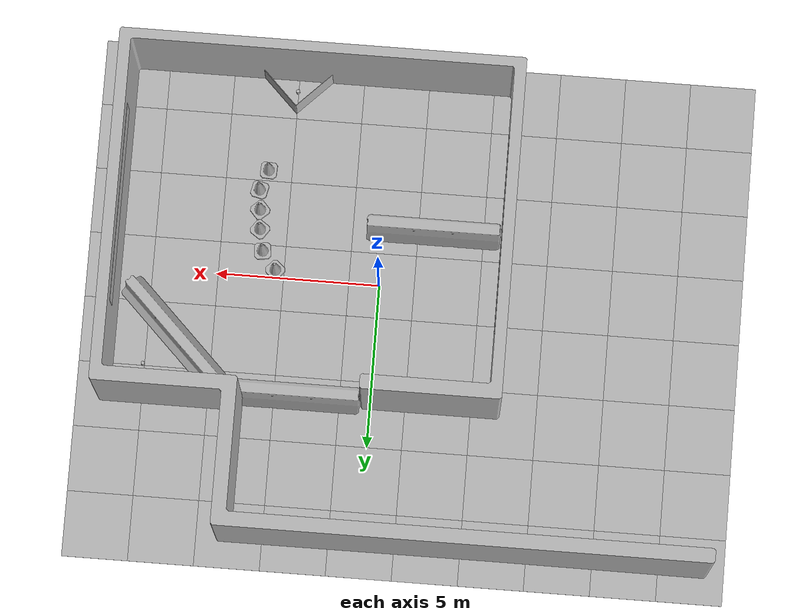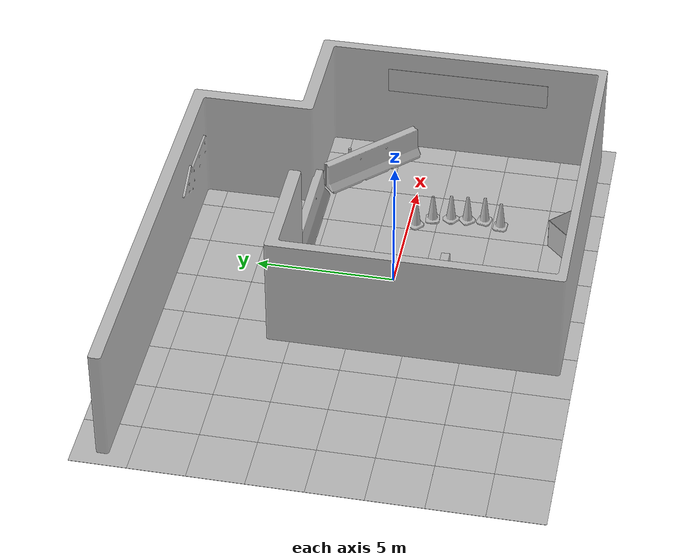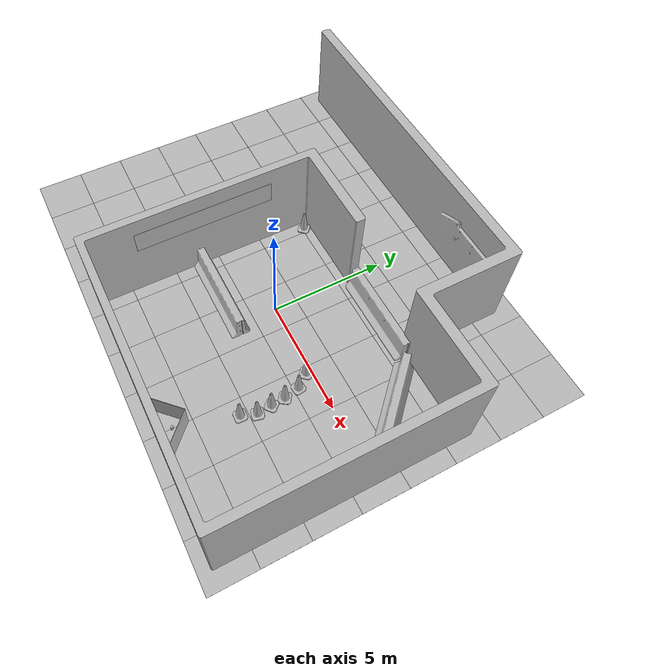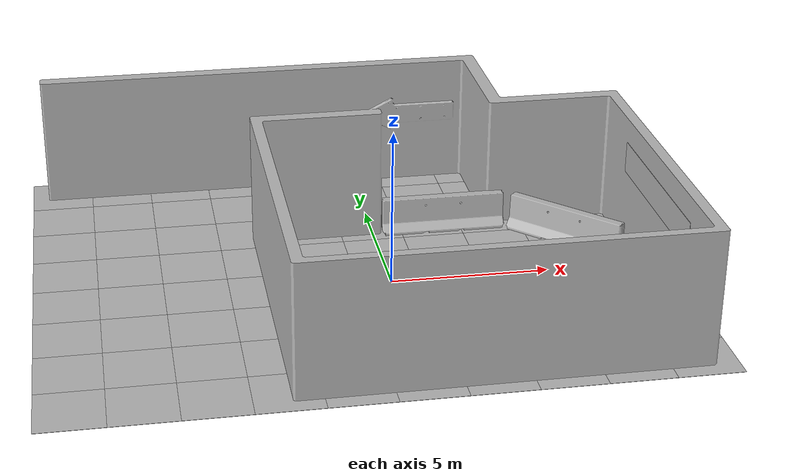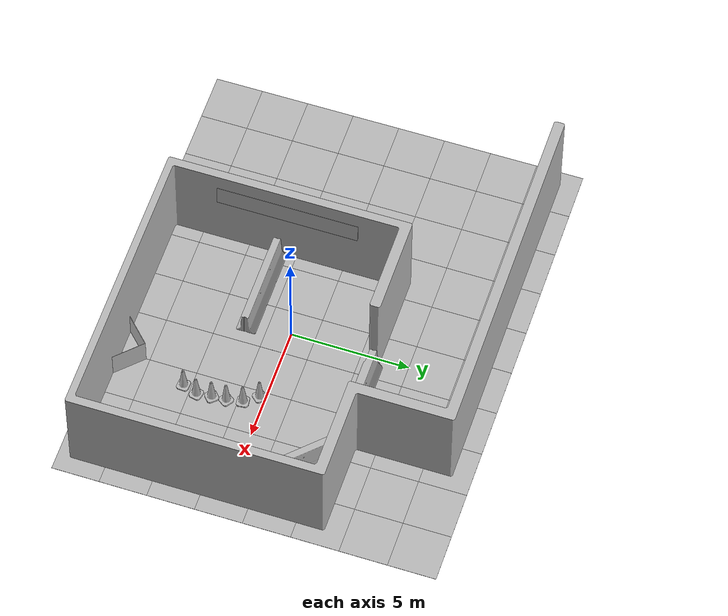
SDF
<sdf version="1.6">
 <world name="default">
  <light name="sun" type="directional">
   <pose>0 0 10 0 -0 0</pose>
   <diffuse>0.8 0.8 0.8 1</diffuse>
   <specular>0.2 0.2 0.2 1</specular>
   <attenuation>
    <range>1000</range>
    <constant>0.9</constant>
    <linear>0.01</linear>
    <quadratic>0.001</quadratic>
   </attenuation>
   <direction>-0.5 0.1 -0.9</direction>
  </light>
  <gravity>0 0 -9.8</gravity>
  <magnetic_field>6e-06 2.3e-05 -4.2e-05</magnetic_field>
  <atmosphere type="adiabatic"/>
  <physics name="default_physics" default="0" type="ode">
   <max_step_size>0.001</max_step_size>
   <real_time_factor>1</real_time_factor>
   <real_time_update_rate>1000</real_time_update_rate>
  </physics>
  <scene><ambient>0.4 0.4 0.4 1</ambient><background>0.7 0.7 0.7 1</background><shadows>1</shadows></scene>
  <audio><device>default</device></audio>
  <spherical_coordinates>
   <surface_model>EARTH_WGS84</surface_model>
   <latitude_deg>0</latitude_deg>
   <longitude_deg>0</longitude_deg>
   <elevation>0</elevation>
   <heading_deg>0</heading_deg>
  </spherical_coordinates>
  <model name="Starting Pen">
   <static>1</static>
   <link name="link">
    <collision name="wall_01">
     <pose>-0 0 2.14 0 -0 0</pose>
     <geometry><box><size>12.15 0.31 4.28</size></box></geometry>
    </collision>
    <collision name="wall_02">
     <pose>-5.28 14.3205 2.14 0 -0 0</pose>
     <geometry><box><size>14.8 0.46 4.28</size></box></geometry>
    </collision>
    <collision name="wall_03">
     <pose>-5.91 5 2.14 0 -0 0</pose>
     <geometry><box><size>0.385 10.3 4.28</size></box></geometry>
    </collision>
    <collision name="wall_04">
     <pose>5.91 5.161 2.14 0 -0 0</pose>
     <geometry><box><size>0.385 10.66 4.28</size></box></geometry>
    </collision>
    <collision name="wall_05">
     <pose>3.9 10.285 2.14 0 -0 0</pose>
     <geometry><box><size>4.38 0.45 4.28</size></box></geometry>
    </collision>
    <collision name="wall_06">
     <pose>-4 9.95 2.14 0 -0 0</pose>
     <geometry><box><size>4.25 0.45 4.28</size></box></geometry>
    </collision>
    <collision name="wall_07">
     <pose>1.94 12.3 2.14 0 -0 0</pose>
     <geometry><box><size>0.45 4.5 4.28</size></box></geometry>
    </collision>
    <collision name="wall_arrow">
     <pose>-0.232 14.03 2.46 0 -0 0</pose>
     <geometry><box><size>3.33 0.12 1.16</size></box></geometry>
    </collision>
    <collision name="collision_floor">
     <pose>-3.21 7.355 0 0 -0 0</pose>
     <geometry><box><size>20 16 0.01</size></box></geometry>
     <surface><friction><ode><mu>100</mu><mu2>50</mu2></ode></friction></surface>
    </collision>
    <visual name="visual_osrf">
     <pose>-5.74 4.99 3 0 -0 0</pose>
     <geometry><box><size>0.01 6 1</size></box></geometry>
     <material>
      <script>
       <uri>model://starting_pen/materials/scripts</uri>
       <uri>model://starting_pen/materials/textures</uri>
       <name>StartingPen/OSRF</name>
      </script>
     </material>
    </visual>
    <visual name="visual_osrf_2">
     <pose>5.74 4.99 3 0 -0 0</pose>
     <geometry><box><size>0.01 6 1</size></box></geometry>
     <material>
      <script>
       <uri>model://starting_pen/materials/scripts</uri>
       <uri>model://starting_pen/materials/textures</uri>
       <name>StartingPen/OSRF</name>
      </script>
     </material>
    </visual>
    <visual name="visual">
     <geometry><mesh><uri>model://starting_pen/meshes/starting_pen.dae</uri></mesh></geometry>
    </visual>
    <visual name="visual_floor_0">
     <pose>-12.21 0.35 0 0 -0 0</pose>
     <geometry><box><size>2 2 0.01</size></box></geometry>
     <material>
      <script>
       <uri>model://starting_pen/materials/scripts</uri>
       <uri>model://starting_pen/materials/textures</uri>
       <name>StartingPen/Floor</name>
      </script>
     </material>
    </visual>
    <visual name="visual_floor_1">
     <pose>-10.21 0.35 0 0 -0 0</pose>
     <geometry><box><size>2 2 0.01</size></box></geometry>
     <material>
      <script>
       <uri>model://starting_pen/materials/scripts</uri>
       <uri>model://starting_pen/materials/textures</uri>
       <name>StartingPen/Floor</name>
      </script>
     </material>
    </visual>
    <visual name="visual_floor_2">
     <pose>-8.21 0.35 0 0 -0 0</pose>
     <geometry><box><size>2 2 0.01</size></box></geometry>
     <material>
      <script>
       <uri>model://starting_pen/materials/scripts</uri>
       <uri>model://starting_pen/materials/textures</uri>
       <name>StartingPen/Floor</name>
      </script>
     </material>
    </visual>
    <visual name="visual_floor_3">
     <pose>-6.21 0.35 0 0 -0 0</pose>
     <geometry><box><size>2 2 0.01</size></box></geometry>
     <material>
      <script>
       <uri>model://starting_pen/materials/scripts</uri>
       <uri>model://starting_pen/materials/textures</uri>
       <name>StartingPen/Floor</name>
      </script>
     </material>
    </visual>
    <visual name="visual_floor_4">
     <pose>-4.21 0.35 0 0 -0 0</pose>
     <geometry><box><size>2 2 0.01</size></box></geometry>
     <material>
      <script>
       <uri>model://starting_pen/materials/scripts</uri>
       <uri>model://starting_pen/materials/textures</uri>
       <name>StartingPen/Floor</name>
      </script>
     </material>
    </visual>
    <visual name="visual_floor_5">
     <pose>-2.21 0.35 0 0 -0 0</pose>
     <geometry><box><size>2 2 0.01</size></box></geometry>
     <material>
      <script>
       <uri>model://starting_pen/materials/scripts</uri>
       <uri>model://starting_pen/materials/textures</uri>
       <name>StartingPen/Floor</name>
      </script>
     </material>
    </visual>
    <visual name="visual_floor_6">
     <pose>-0.21 0.35 0 0 -0 0</pose>
     <geometry><box><size>2 2 0.01</size></box></geometry>
     <material>
      <script>
       <uri>model://starting_pen/materials/scripts</uri>
       <uri>model://starting_pen/materials/textures</uri>
       <name>StartingPen/Floor</name>
      </script>
     </material>
    </visual>
    <visual name="visual_floor_7">
     <pose>1.79 0.35 0 0 -0 1.5707</pose>
     <geometry><box><size>2 2 0.01</size></box></geometry>
     <material>
      <script>
       <uri>model://starting_pen/materials/scripts</uri>
       <uri>model://starting_pen/materials/textures</uri>
       <name>StartingPen/FloorStripped</name>
      </script>
     </material>
    </visual>
    <visual name="visual_floor_8">
     <pose>3.79 0.35 0 0 -0 0</pose>
     <geometry><box><size>2 2 0.01</size></box></geometry>
     <material>
      <script>
       <uri>model://starting_pen/materials/scripts</uri>
       <uri>model://starting_pen/materials/textures</uri>
       <name>StartingPen/Floor</name>
      </script>
     </material>
    </visual>
    <visual name="visual_floor_9">
     <pose>5.79 0.35 0 0 -0 0</pose>
     <geometry><box><size>2 2 0.01</size></box></geometry>
     <material>
      <script>
       <uri>model://starting_pen/materials/scripts</uri>
       <uri>model://starting_pen/materials/textures</uri>
       <name>StartingPen/Floor</name>
      </script>
     </material>
    </visual>
    <visual name="visual_floor_10">
     <pose>-12.21 2.35 0 0 -0 1.5707</pose>
     <geometry><box><size>2 2 0.01</size></box></geometry>
     <material>
      <script>
       <uri>model://starting_pen/materials/scripts</uri>
       <uri>model://starting_pen/materials/textures</uri>
       <name>StartingPen/FloorStripped</name>
      </script>
     </material>
    </visual>
    <visual name="visual_floor_11">
     <pose>-10.21 2.35 0 0 -0 0</pose>
     <geometry><box><size>2 2 0.01</size></box></geometry>
     <material>
      <script>
       <uri>model://starting_pen/materials/scripts</uri>
       <uri>model://starting_pen/materials/textures</uri>
       <name>StartingPen/Floor</name>
      </script>
     </material>
    </visual>
    <visual name="visual_floor_12">
     <pose>-8.21 2.35 0 0 -0 0</pose>
     <geometry><box><size>2 2 0.01</size></box></geometry>
     <material>
      <script>
       <uri>model://starting_pen/materials/scripts</uri>
       <uri>model://starting_pen/materials/textures</uri>
       <name>StartingPen/Floor</name>
      </script>
     </material>
    </visual>
    <visual name="visual_floor_13">
     <pose>-6.21 2.35 0 0 -0 0</pose>
     <geometry><box><size>2 2 0.01</size></box></geometry>
     <material>
      <script>
       <uri>model://starting_pen/materials/scripts</uri>
       <uri>model://starting_pen/materials/textures</uri>
       <name>StartingPen/Floor</name>
      </script>
     </material>
    </visual>
    <visual name="visual_floor_14">
     <pose>-4.21 2.35 0 0 -0 0</pose>
     <geometry><box><size>2 2 0.01</size></box></geometry>
     <material>
      <script>
       <uri>model://starting_pen/materials/scripts</uri>
       <uri>model://starting_pen/materials/textures</uri>
       <name>StartingPen/Floor</name>
      </script>
     </material>
    </visual>
    <visual name="visual_floor_15">
     <pose>-2.21 2.35 0 0 -0 0</pose>
     <geometry><box><size>2 2 0.01</size></box></geometry>
     <material>
      <script>
       <uri>model://starting_pen/materials/scripts</uri>
       <uri>model://starting_pen/materials/textures</uri>
       <name>StartingPen/Floor</name>
      </script>
     </material>
    </visual>
    <visual name="visual_floor_16">
     <pose>-0.21 2.35 0 0 -0 1.5707</pose>
     <geometry><box><size>2 2 0.01</size></box></geometry>
     <material>
      <script>
       <uri>model://starting_pen/materials/scripts</uri>
       <uri>model://starting_pen/materials/textures</uri>
       <name>StartingPen/FloorStripped</name>
      </script>
     </material>
    </visual>
    <visual name="visual_floor_17">
     <pose>1.79 2.35 0 0 -0 1.5707</pose>
     <geometry><box><size>2 2 0.01</size></box></geometry>
     <material>
      <script>
       <uri>model://starting_pen/materials/scripts</uri>
       <uri>model://starting_pen/materials/textures</uri>
       <name>StartingPen/Floor</name>
      </script>
     </material>
    </visual>
    <visual name="visual_floor_18">
     <pose>3.79 2.35 0 0 -0 0</pose>
     <geometry><box><size>2 2 0.01</size></box></geometry>
     <material>
      <script>
       <uri>model://starting_pen/materials/scripts</uri>
       <uri>model://starting_pen/materials/textures</uri>
       <name>StartingPen/Floor</name>
      </script>
     </material>
    </visual>
    <visual name="visual_floor_19">
     <pose>5.79 2.35 0 0 -0 0</pose>
     <geometry><box><size>2 2 0.01</size></box></geometry>
     <material>
      <script>
       <uri>model://starting_pen/materials/scripts</uri>
       <uri>model://starting_pen/materials/textures</uri>
       <name>StartingPen/Floor</name>
      </script>
     </material>
    </visual>
    <visual name="visual_floor_20">
     <pose>-12.21 4.35 0 0 -0 0</pose>
     <geometry><box><size>2 2 0.01</size></box></geometry>
     <material>
      <script>
       <uri>model://starting_pen/materials/scripts</uri>
       <uri>model://starting_pen/materials/textures</uri>
       <name>StartingPen/Floor</name>
      </script>
     </material>
    </visual>
    <visual name="visual_floor_21">
     <pose>-10.21 4.35 0 0 -0 0</pose>
     <geometry><box><size>2 2 0.01</size></box></geometry>
     <material>
      <script>
       <uri>model://starting_pen/materials/scripts</uri>
       <uri>model://starting_pen/materials/textures</uri>
       <name>StartingPen/Floor</name>
      </script>
     </material>
    </visual>
    <visual name="visual_floor_22">
     <pose>-8.21 4.35 0 0 -0 1.5707</pose>
     <geometry><box><size>2 2 0.01</size></box></geometry>
     <material>
      <script>
       <uri>model://starting_pen/materials/scripts</uri>
       <uri>model://starting_pen/materials/textures</uri>
       <name>StartingPen/FloorStripped</name>
      </script>
     </material>
    </visual>
    <visual name="visual_floor_23">
     <pose>-6.21 4.35 0 0 -0 0</pose>
     <geometry><box><size>2 2 0.01</size></box></geometry>
     <material>
      <script>
       <uri>model://starting_pen/materials/scripts</uri>
       <uri>model://starting_pen/materials/textures</uri>
       <name>StartingPen/Floor</name>
      </script>
     </material>
    </visual>
    <visual name="visual_floor_24">
     <pose>-4.21 4.35 0 0 -0 0</pose>
     <geometry><box><size>2 2 0.01</size></box></geometry>
     <material>
      <script>
       <uri>model://starting_pen/materials/scripts</uri>
       <uri>model://starting_pen/materials/textures</uri>
       <name>StartingPen/Floor</name>
      </script>
     </material>
    </visual>
    <visual name="visual_floor_25">
     <pose>-2.21 4.35 0 0 -0 0</pose>
     <geometry><box><size>2 2 0.01</size></box></geometry>
     <material>
      <script>
       <uri>model://starting_pen/materials/scripts</uri>
       <uri>model://starting_pen/materials/textures</uri>
       <name>StartingPen/Floor</name>
      </script>
     </material>
    </visual>
    <visual name="visual_floor_26">
     <pose>-0.21 4.35 0 0 -0 0</pose>
     <geometry><box><size>2 2 0.01</size></box></geometry>
     <material>
      <script>
       <uri>model://starting_pen/materials/scripts</uri>
       <uri>model://starting_pen/materials/textures</uri>
       <name>StartingPen/Floor</name>
      </script>
     </material>
    </visual>
    <visual name="visual_floor_27">
     <pose>1.79 4.35 0 0 -0 0</pose>
     <geometry><box><size>2 2 0.01</size></box></geometry>
     <material>
      <script>
       <uri>model://starting_pen/materials/scripts</uri>
       <uri>model://starting_pen/materials/textures</uri>
       <name>StartingPen/Floor</name>
      </script>
     </material>
    </visual>
    <visual name="visual_floor_28">
     <pose>3.79 4.35 0 0 -0 0</pose>
     <geometry><box><size>2 2 0.01</size></box></geometry>
     <material>
      <script>
       <uri>model://starting_pen/materials/scripts</uri>
       <uri>model://starting_pen/materials/textures</uri>
       <name>StartingPen/Floor</name>
      </script>
     </material>
    </visual>
    <visual name="visual_floor_29">
     <pose>5.79 4.35 0 0 -0 1.5707</pose>
     <geometry><box><size>2 2 0.01</size></box></geometry>
     <material>
      <script>
       <uri>model://starting_pen/materials/scripts</uri>
       <uri>model://starting_pen/materials/textures</uri>
       <name>StartingPen/FloorStripped</name>
      </script>
     </material>
    </visual>
    <visual name="visual_floor_30">
     <pose>-12.21 6.35 0 0 -0 0</pose>
     <geometry><box><size>2 2 0.01</size></box></geometry>
     <material>
      <script>
       <uri>model://starting_pen/materials/scripts</uri>
       <uri>model://starting_pen/materials/textures</uri>
       <name>StartingPen/Floor</name>
      </script>
     </material>
    </visual>
    <visual name="visual_floor_31">
     <pose>-10.21 6.35 0 0 -0 0</pose>
     <geometry><box><size>2 2 0.01</size></box></geometry>
     <material>
      <script>
       <uri>model://starting_pen/materials/scripts</uri>
       <uri>model://starting_pen/materials/textures</uri>
       <name>StartingPen/Floor</name>
      </script>
     </material>
    </visual>
    <visual name="visual_floor_32">
     <pose>-8.21 6.35 0 0 -0 0</pose>
     <geometry><box><size>2 2 0.01</size></box></geometry>
     <material>
      <script>
       <uri>model://starting_pen/materials/scripts</uri>
       <uri>model://starting_pen/materials/textures</uri>
       <name>StartingPen/Floor</name>
      </script>
     </material>
    </visual>
    <visual name="visual_floor_33">
     <pose>-6.21 6.35 0 0 -0 1.5707</pose>
     <geometry><box><size>2 2 0.01</size></box></geometry>
     <material>
      <script>
       <uri>model://starting_pen/materials/scripts</uri>
       <uri>model://starting_pen/materials/textures</uri>
       <name>StartingPen/FloorStripped</name>
      </script>
     </material>
    </visual>
    <visual name="visual_floor_34">
     <pose>-4.21 6.35 0 0 -0 0</pose>
     <geometry><box><size>2 2 0.01</size></box></geometry>
     <material>
      <script>
       <uri>model://starting_pen/materials/scripts</uri>
       <uri>model://starting_pen/materials/textures</uri>
       <name>StartingPen/Floor</name>
      </script>
     </material>
    </visual>
    <visual name="visual_floor_35">
     <pose>-2.21 6.35 0 0 -0 1.5707</pose>
     <geometry><box><size>2 2 0.01</size></box></geometry>
     <material>
      <script>
       <uri>model://starting_pen/materials/scripts</uri>
       <uri>model://starting_pen/materials/textures</uri>
       <name>StartingPen/FloorStripped</name>
      </script>
     </material>
    </visual>
    <visual name="visual_floor_36">
     <pose>-0.21 6.35 0 0 -0 0</pose>
     <geometry><box><size>2 2 0.01</size></box></geometry>
     <material>
      <script>
       <uri>model://starting_pen/materials/scripts</uri>
       <uri>model://starting_pen/materials/textures</uri>
       <name>StartingPen/Floor</name>
      </script>
     </material>
    </visual>
    <visual name="visual_floor_37">
     <pose>1.79 6.35 0 0 -0 0</pose>
     <geometry><box><size>2 2 0.01</size></box></geometry>
     <material>
      <script>
       <uri>model://starting_pen/materials/scripts</uri>
       <uri>model://starting_pen/materials/textures</uri>
       <name>StartingPen/Floor</name>
      </script>
     </material>
    </visual>
    <visual name="visual_floor_38">
     <pose>3.79 6.35 0 0 -0 0</pose>
     <geometry><box><size>2 2 0.01</size></box></geometry>
     <material>
      <script>
       <uri>model://starting_pen/materials/scripts</uri>
       <uri>model://starting_pen/materials/textures</uri>
       <name>StartingPen/Floor</name>
      </script>
     </material>
    </visual>
    <visual name="visual_floor_39">
     <pose>5.79 6.35 0 0 -0 0</pose>
     <geometry><box><size>2 2 0.01</size></box></geometry>
     <material>
      <script>
       <uri>model://starting_pen/materials/scripts</uri>
       <uri>model://starting_pen/materials/textures</uri>
       <name>StartingPen/Floor</name>
      </script>
     </material>
    </visual>
    <visual name="visual_floor_40">
     <pose>-12.21 8.35 0 0 -0 0</pose>
     <geometry><box><size>2 2 0.01</size></box></geometry>
     <material>
      <script>
       <uri>model://starting_pen/materials/scripts</uri>
       <uri>model://starting_pen/materials/textures</uri>
       <name>StartingPen/Floor</name>
      </script>
     </material>
    </visual>
    <visual name="visual_floor_41">
     <pose>-10.21 8.35 0 0 -0 0</pose>
     <geometry><box><size>2 2 0.01</size></box></geometry>
     <material>
      <script>
       <uri>model://starting_pen/materials/scripts</uri>
       <uri>model://starting_pen/materials/textures</uri>
       <name>StartingPen/Floor</name>
      </script>
     </material>
    </visual>
    <visual name="visual_floor_42">
     <pose>-8.21 8.35 0 0 -0 1.5707</pose>
     <geometry><box><size>2 2 0.01</size></box></geometry>
     <material>
      <script>
       <uri>model://starting_pen/materials/scripts</uri>
       <uri>model://starting_pen/materials/textures</uri>
       <name>StartingPen/FloorStripped</name>
      </script>
     </material>
    </visual>
    <visual name="visual_floor_43">
     <pose>-6.21 8.35 0 0 -0 0</pose>
     <geometry><box><size>2 2 0.01</size></box></geometry>
     <material>
      <script>
       <uri>model://starting_pen/materials/scripts</uri>
       <uri>model://starting_pen/materials/textures</uri>
       <name>StartingPen/Floor</name>
      </script>
     </material>
    </visual>
    <visual name="visual_floor_44">
     <pose>-4.21 8.35 0 0 -0 0</pose>
     <geometry><box><size>2 2 0.01</size></box></geometry>
     <material>
      <script>
       <uri>model://starting_pen/materials/scripts</uri>
       <uri>model://starting_pen/materials/textures</uri>
       <name>StartingPen/Floor</name>
      </script>
     </material>
    </visual>
    <visual name="visual_floor_45">
     <pose>-2.21 8.35 0 0 -0 0</pose>
     <geometry><box><size>2 2 0.01</size></box></geometry>
     <material>
      <script>
       <uri>model://starting_pen/materials/scripts</uri>
       <uri>model://starting_pen/materials/textures</uri>
       <name>StartingPen/Floor</name>
      </script>
     </material>
    </visual>
    <visual name="visual_floor_46">
     <pose>-0.21 8.35 0 0 -0 1.5707</pose>
     <geometry><box><size>2 2 0.01</size></box></geometry>
     <material>
      <script>
       <uri>model://starting_pen/materials/scripts</uri>
       <uri>model://starting_pen/materials/textures</uri>
       <name>StartingPen/FloorStripped</name>
      </script>
     </material>
    </visual>
    <visual name="visual_floor_47">
     <pose>1.79 8.35 0 0 -0 0</pose>
     <geometry><box><size>2 2 0.01</size></box></geometry>
     <material>
      <script>
       <uri>model://starting_pen/materials/scripts</uri>
       <uri>model://starting_pen/materials/textures</uri>
       <name>StartingPen/Floor</name>
      </script>
     </material>
    </visual>
    <visual name="visual_floor_48">
     <pose>3.79 8.35 0 0 -0 0</pose>
     <geometry><box><size>2 2 0.01</size></box></geometry>
     <material>
      <script>
       <uri>model://starting_pen/materials/scripts</uri>
       <uri>model://starting_pen/materials/textures</uri>
       <name>StartingPen/Floor</name>
      </script>
     </material>
    </visual>
    <visual name="visual_floor_49">
     <pose>5.79 8.35 0 0 -0 0</pose>
     <geometry><box><size>2 2 0.01</size></box></geometry>
     <material>
      <script>
       <uri>model://starting_pen/materials/scripts</uri>
       <uri>model://starting_pen/materials/textures</uri>
       <name>StartingPen/Floor</name>
      </script>
     </material>
    </visual>
    <visual name="visual_floor_50">
     <pose>-12.21 10.35 0 0 -0 0</pose>
     <geometry><box><size>2 2 0.01</size></box></geometry>
     <material>
      <script>
       <uri>model://starting_pen/materials/scripts</uri>
       <uri>model://starting_pen/materials/textures</uri>
       <name>StartingPen/Floor</name>
      </script>
     </material>
    </visual>
    <visual name="visual_floor_51">
     <pose>-10.21 10.35 0 0 -0 0</pose>
     <geometry><box><size>2 2 0.01</size></box></geometry>
     <material>
      <script>
       <uri>model://starting_pen/materials/scripts</uri>
       <uri>model://starting_pen/materials/textures</uri>
       <name>StartingPen/Floor</name>
      </script>
     </material>
    </visual>
    <visual name="visual_floor_52">
     <pose>-8.21 10.35 0 0 -0 0</pose>
     <geometry><box><size>2 2 0.01</size></box></geometry>
     <material>
      <script>
       <uri>model://starting_pen/materials/scripts</uri>
       <uri>model://starting_pen/materials/textures</uri>
       <name>StartingPen/Floor</name>
      </script>
     </material>
    </visual>
    <visual name="visual_floor_53">
     <pose>-6.21 10.35 0 0 -0 1.5707</pose>
     <geometry><box><size>2 2 0.01</size></box></geometry>
     <material>
      <script>
       <uri>model://starting_pen/materials/scripts</uri>
       <uri>model://starting_pen/materials/textures</uri>
       <name>StartingPen/FloorStripped</name>
      </script>
     </material>
    </visual>
    <visual name="visual_floor_54">
     <pose>-4.21 10.35 0 0 -0 0</pose>
     <geometry><box><size>2 2 0.01</size></box></geometry>
     <material>
      <script>
       <uri>model://starting_pen/materials/scripts</uri>
       <uri>model://starting_pen/materials/textures</uri>
       <name>StartingPen/Floor</name>
      </script>
     </material>
    </visual>
    <visual name="visual_floor_55">
     <pose>-2.21 10.35 0 0 -0 0</pose>
     <geometry><box><size>2 2 0.01</size></box></geometry>
     <material>
      <script>
       <uri>model://starting_pen/materials/scripts</uri>
       <uri>model://starting_pen/materials/textures</uri>
       <name>StartingPen/Floor</name>
      </script>
     </material>
    </visual>
    <visual name="visual_floor_56">
     <pose>-0.21 10.35 0 0 -0 0</pose>
     <geometry><box><size>2 2 0.01</size></box></geometry>
     <material>
      <script>
       <uri>model://starting_pen/materials/scripts</uri>
       <uri>model://starting_pen/materials/textures</uri>
       <name>StartingPen/Floor</name>
      </script>
     </material>
    </visual>
    <visual name="visual_floor_57">
     <pose>1.79 10.35 0 0 -0 0</pose>
     <geometry><box><size>2 2 0.01</size></box></geometry>
     <material>
      <script>
       <uri>model://starting_pen/materials/scripts</uri>
       <uri>model://starting_pen/materials/textures</uri>
       <name>StartingPen/Floor</name>
      </script>
     </material>
    </visual>
    <visual name="visual_floor_58">
     <pose>3.79 10.35 0 0 -0 0</pose>
     <geometry><box><size>2 2 0.01</size></box></geometry>
     <material>
      <script>
       <uri>model://starting_pen/materials/scripts</uri>
       <uri>model://starting_pen/materials/textures</uri>
       <name>StartingPen/Floor</name>
      </script>
     </material>
    </visual>
    <visual name="visual_floor_59">
     <pose>5.79 10.35 0 0 -0 0</pose>
     <geometry><box><size>2 2 0.01</size></box></geometry>
     <material>
      <script>
       <uri>model://starting_pen/materials/scripts</uri>
       <uri>model://starting_pen/materials/textures</uri>
       <name>StartingPen/Floor</name>
      </script>
     </material>
    </visual>
    <visual name="visual_floor_60">
     <pose>-12.21 12.35 0 0 -0 1.5707</pose>
     <geometry><box><size>2 2 0.01</size></box></geometry>
     <material>
      <script>
       <uri>model://starting_pen/materials/scripts</uri>
       <uri>model://starting_pen/materials/textures</uri>
       <name>StartingPen/FloorStripped</name>
      </script>
     </material>
    </visual>
    <visual name="visual_floor_61">
     <pose>-10.21 12.35 0 0 -0 0</pose>
     <geometry><box><size>2 2 0.01</size></box></geometry>
     <material>
      <script>
       <uri>model://starting_pen/materials/scripts</uri>
       <uri>model://starting_pen/materials/textures</uri>
       <name>StartingPen/Floor</name>
      </script>
     </material>
    </visual>
    <visual name="visual_floor_62">
     <pose>-8.21 12.35 0 0 -0 0</pose>
     <geometry><box><size>2 2 0.01</size></box></geometry>
     <material>
      <script>
       <uri>model://starting_pen/materials/scripts</uri>
       <uri>model://starting_pen/materials/textures</uri>
       <name>StartingPen/Floor</name>
      </script>
     </material>
    </visual>
    <visual name="visual_floor_63">
     <pose>-6.21 12.35 0 0 -0 0</pose>
     <geometry><box><size>2 2 0.01</size></box></geometry>
     <material>
      <script>
       <uri>model://starting_pen/materials/scripts</uri>
       <uri>model://starting_pen/materials/textures</uri>
       <name>StartingPen/Floor</name>
      </script>
     </material>
    </visual>
    <visual name="visual_floor_64">
     <pose>-4.21 12.35 0 0 -0 0</pose>
     <geometry><box><size>2 2 0.01</size></box></geometry>
     <material>
      <script>
       <uri>model://starting_pen/materials/scripts</uri>
       <uri>model://starting_pen/materials/textures</uri>
       <name>StartingPen/Floor</name>
      </script>
     </material>
    </visual>
    <visual name="visual_floor_65">
     <pose>-2.21 12.35 0 0 -0 1.5707</pose>
     <geometry><box><size>2 2 0.01</size></box></geometry>
     <material>
      <script>
       <uri>model://starting_pen/materials/scripts</uri>
       <uri>model://starting_pen/materials/textures</uri>
       <name>StartingPen/FloorStripped</name>
      </script>
     </material>
    </visual>
    <visual name="visual_floor_66">
     <pose>-0.21 12.35 0 0 -0 0</pose>
     <geometry><box><size>2 2 0.01</size></box></geometry>
     <material>
      <script>
       <uri>model://starting_pen/materials/scripts</uri>
       <uri>model://starting_pen/materials/textures</uri>
       <name>StartingPen/Floor</name>
      </script>
     </material>
    </visual>
    <visual name="visual_floor_67">
     <pose>1.79 12.35 0 0 -0 0</pose>
     <geometry><box><size>2 2 0.01</size></box></geometry>
     <material>
      <script>
       <uri>model://starting_pen/materials/scripts</uri>
       <uri>model://starting_pen/materials/textures</uri>
       <name>StartingPen/Floor</name>
      </script>
     </material>
    </visual>
    <visual name="visual_floor_68">
     <pose>3.79 12.35 0 0 -0 0</pose>
     <geometry><box><size>2 2 0.01</size></box></geometry>
     <material>
      <script>
       <uri>model://starting_pen/materials/scripts</uri>
       <uri>model://starting_pen/materials/textures</uri>
       <name>StartingPen/Floor</name>
      </script>
     </material>
    </visual>
    <visual name="visual_floor_69">
     <pose>5.79 12.35 0 0 -0 0</pose>
     <geometry><box><size>2 2 0.01</size></box></geometry>
     <material>
      <script>
       <uri>model://starting_pen/materials/scripts</uri>
       <uri>model://starting_pen/materials/textures</uri>
       <name>StartingPen/Floor</name>
      </script>
     </material>
    </visual>
    <visual name="visual_floor_70">
     <pose>-12.21 14.35 0 0 -0 0</pose>
     <geometry><box><size>2 2 0.01</size></box></geometry>
     <material>
      <script>
       <uri>model://starting_pen/materials/scripts</uri>
       <uri>model://starting_pen/materials/textures</uri>
       <name>StartingPen/Floor</name>
      </script>
     </material>
    </visual>
    <visual name="visual_floor_71">
     <pose>-10.21 14.35 0 0 -0 0</pose>
     <geometry><box><size>2 2 0.01</size></box></geometry>
     <material>
      <script>
       <uri>model://starting_pen/materials/scripts</uri>
       <uri>model://starting_pen/materials/textures</uri>
       <name>StartingPen/Floor</name>
      </script>
     </material>
    </visual>
    <visual name="visual_floor_72">
     <pose>-8.21 14.35 0 0 -0 0</pose>
     <geometry><box><size>2 2 0.01</size></box></geometry>
     <material>
      <script>
       <uri>model://starting_pen/materials/scripts</uri>
       <uri>model://starting_pen/materials/textures</uri>
       <name>StartingPen/Floor</name>
      </script>
     </material>
    </visual>
    <visual name="visual_floor_73">
     <pose>-6.21 14.35 0 0 -0 0</pose>
     <geometry><box><size>2 2 0.01</size></box></geometry>
     <material>
      <script>
       <uri>model://starting_pen/materials/scripts</uri>
       <uri>model://starting_pen/materials/textures</uri>
       <name>StartingPen/Floor</name>
      </script>
     </material>
    </visual>
    <visual name="visual_floor_74">
     <pose>-4.21 14.35 0 0 -0 1.5707</pose>
     <geometry><box><size>2 2 0.01</size></box></geometry>
     <material>
      <script>
       <uri>model://starting_pen/materials/scripts</uri>
       <uri>model://starting_pen/materials/textures</uri>
       <name>StartingPen/FloorStripped</name>
      </script>
     </material>
    </visual>
    <visual name="visual_floor_75">
     <pose>-2.21 14.35 0 0 -0 1.5707</pose>
     <geometry><box><size>2 2 0.01</size></box></geometry>
     <material>
      <script>
       <uri>model://starting_pen/materials/scripts</uri>
       <uri>model://starting_pen/materials/textures</uri>
       <name>StartingPen/Floor</name>
      </script>
     </material>
    </visual>
    <visual name="visual_floor_76">
     <pose>-0.21 14.35 0 0 -0 0</pose>
     <geometry><box><size>2 2 0.01</size></box></geometry>
     <material>
      <script>
       <uri>model://starting_pen/materials/scripts</uri>
       <uri>model://starting_pen/materials/textures</uri>
       <name>StartingPen/Floor</name>
      </script>
     </material>
    </visual>
    <visual name="visual_floor_77">
     <pose>1.79 14.35 0 0 -0 0</pose>
     <geometry><box><size>2 2 0.01</size></box></geometry>
     <material>
      <script>
       <uri>model://starting_pen/materials/scripts</uri>
       <uri>model://starting_pen/materials/textures</uri>
       <name>StartingPen/Floor</name>
      </script>
     </material>
    </visual>
    <visual name="visual_floor_78">
     <pose>3.79 14.35 0 0 -0 0</pose>
     <geometry><box><size>2 2 0.01</size></box></geometry>
     <material>
      <script>
       <uri>model://starting_pen/materials/scripts</uri>
       <uri>model://starting_pen/materials/textures</uri>
       <name>StartingPen/FloorStripped</name>
      </script>
     </material>
    </visual>
    <visual name="visual_floor_79">
     <pose>5.79 14.35 0 0 -0 0</pose>
     <geometry><box><size>2 2 0.01</size></box></geometry>
     <material>
      <script>
       <uri>model://starting_pen/materials/scripts</uri>
       <uri>model://starting_pen/materials/textures</uri>
       <name>StartingPen/Floor</name>
      </script>
     </material>
    </visual>
   </link>
   <pose>2.14869 -6.3566 -0 0 -0 0</pose>
  </model>
  <model name="jersey_barrier">
   <static>1</static>
   <link name="link">
    <visual name="visual">
     <geometry><mesh><uri>model://jersey_barrier/meshes/jersey_barrier.dae</uri></mesh></geometry>
    </visual>
    <collision name="upright">
     <pose>0 0 0.5715 0 -0 0</pose>
     <geometry><box><size>4.06542 0.3063 1.143</size></box></geometry>
    </collision>
    <collision name="base">
     <pose>0 0 0.032258 0 -0 0</pose>
     <geometry><box><size>4.06542 0.8107 0.064516</size></box></geometry>
    </collision>
    <collision name="base2">
     <pose>0 0 0.1 0 -0 0</pose>
     <geometry><box><size>4.06542 0.65 0.1</size></box></geometry>
    </collision>
    <collision name="base3">
     <pose>0 0 0.2 0 -0 0</pose>
     <geometry><box><size>4.06542 0.5 0.1</size></box></geometry>
    </collision>
    <collision name="left-angle">
     <pose>0 -0.224 0.2401 0.9 -0 0</pose>
     <geometry><box><size>4.06542 0.5 0.064516</size></box></geometry>
    </collision>
    <collision name="right-angle">
     <pose>0 0.224 0.2401 -0.9 0 0</pose>
     <geometry><box><size>4.06542 0.5 0.064516</size></box></geometry>
    </collision>
   </link>
   <pose>2.34905 3.59557 0 0 -0 0</pose>
  </model>
  <model name="jersey_barrier_clone">
   <static>1</static>
   <link name="link">
    <visual name="visual">
     <geometry><mesh><uri>model://jersey_barrier/meshes/jersey_barrier.dae</uri></mesh></geometry>
    </visual>
    <collision name="upright">
     <pose>0 0 0.5715 0 -0 0</pose>
     <geometry><box><size>4.06542 0.3063 1.143</size></box></geometry>
    </collision>
    <collision name="base">
     <pose>0 0 0.032258 0 -0 0</pose>
     <geometry><box><size>4.06542 0.8107 0.064516</size></box></geometry>
    </collision>
    <collision name="base2">
     <pose>0 0 0.1 0 -0 0</pose>
     <geometry><box><size>4.06542 0.65 0.1</size></box></geometry>
    </collision>
    <collision name="base3">
     <pose>0 0 0.2 0 -0 0</pose>
     <geometry><box><size>4.06542 0.5 0.1</size></box></geometry>
    </collision>
    <collision name="left-angle">
     <pose>0 -0.224 0.2401 0.9 -0 0</pose>
     <geometry><box><size>4.06542 0.5 0.064516</size></box></geometry>
    </collision>
    <collision name="right-angle">
     <pose>0 0.224 0.2401 -0.9 0 0</pose>
     <geometry><box><size>4.06542 0.5 0.064516</size></box></geometry>
    </collision>
   </link>
   <pose>-1.52755 -1.78799 0 0 -0 0</pose>
  </model>
  <model name="jersey_barrier_clone_clone">
   <static>1</static>
   <link name="link">
    <visual name="visual">
     <geometry><mesh><uri>model://jersey_barrier/meshes/jersey_barrier.dae</uri></mesh></geometry>
    </visual>
    <collision name="upright">
     <pose>0 0 0.5715 0 -0 0</pose>
     <geometry><box><size>4.06542 0.3063 1.143</size></box></geometry>
    </collision>
    <collision name="base">
     <pose>0 0 0.032258 0 -0 0</pose>
     <geometry><box><size>4.06542 0.8107 0.064516</size></box></geometry>
    </collision>
    <collision name="base2">
     <pose>0 0 0.1 0 -0 0</pose>
     <geometry><box><size>4.06542 0.65 0.1</size></box></geometry>
    </collision>
    <collision name="base3">
     <pose>0 0 0.2 0 -0 0</pose>
     <geometry><box><size>4.06542 0.5 0.1</size></box></geometry>
    </collision>
    <collision name="left-angle">
     <pose>0 -0.224 0.2401 0.9 -0 0</pose>
     <geometry><box><size>4.06542 0.5 0.064516</size></box></geometry>
    </collision>
    <collision name="right-angle">
     <pose>0 0.224 0.2401 -0.9 0 0</pose>
     <geometry><box><size>4.06542 0.5 0.064516</size></box></geometry>
    </collision>
   </link>
   <pose>6.12534 1.96332 0 0 0 -0.785398</pose>
  </model>
  <model name="Construction Cone_clone">
   <link name="link">
    <collision name="collision">
     <geometry>
      <mesh><scale>10 10 10</scale><uri>model://construction_cone/meshes/construction_cone.dae</uri></mesh>
     </geometry>
    </collision>
    <visual name="visual">
     <geometry>
      <mesh><scale>10 10 10</scale><uri>model://construction_cone/meshes/construction_cone.dae</uri></mesh>
     </geometry>
    </visual>
    <inertial>
     <inertia><ixx>1</ixx><ixy>0</ixy><ixz>0</ixz><iyy>1</iyy><iyz>0</iyz><izz>1</izz></inertia>
     <mass>1</mass>
    </inertial>
   </link>
   <pose>3.2095 -0.246526 0.005 1e-06 -0 -0.744326</pose>
  </model>
  <model name="Construction Cone_clone_0">
   <link name="link">
    <collision name="collision">
     <geometry>
      <mesh><scale>10 10 10</scale><uri>model://construction_cone/meshes/construction_cone.dae</uri></mesh>
     </geometry>
    </collision>
    <visual name="visual">
     <geometry>
      <mesh><scale>10 10 10</scale><uri>model://construction_cone/meshes/construction_cone.dae</uri></mesh>
     </geometry>
    </visual>
    <inertial>
     <inertia><ixx>1</ixx><ixy>0</ixy><ixz>0</ixz><iyy>1</iyy><iyz>0</iyz><izz>1</izz></inertia>
     <mass>1</mass>
    </inertial>
   </link>
   <pose>3.63757 -0.804786 0.005 -0 1e-06 0.111105</pose>
  </model>
  <model name="Construction Cone_clone_1">
   <link name="link">
    <collision name="collision">
     <geometry>
      <mesh><scale>10 10 10</scale><uri>model://construction_cone/meshes/construction_cone.dae</uri></mesh>
     </geometry>
    </collision>
    <visual name="visual">
     <geometry>
      <mesh><scale>10 10 10</scale><uri>model://construction_cone/meshes/construction_cone.dae</uri></mesh>
     </geometry>
    </visual>
    <inertial>
     <inertia><ixx>1</ixx><ixy>0</ixy><ixz>0</ixz><iyy>1</iyy><iyz>0</iyz><izz>1</izz></inertia>
     <mass>1</mass>
    </inertial>
   </link>
   <pose>3.77284 -1.46643 0.004999 -2e-06 2e-06 -0.61171</pose>
  </model>
  <model name="Construction Cone_clone_2">
   <link name="link">
    <collision name="collision">
     <geometry>
      <mesh><scale>10 10 10</scale><uri>model://construction_cone/meshes/construction_cone.dae</uri></mesh>
     </geometry>
    </collision>
    <visual name="visual">
     <geometry>
      <mesh><scale>10 10 10</scale><uri>model://construction_cone/meshes/construction_cone.dae</uri></mesh>
     </geometry>
    </visual>
    <inertial>
     <inertia><ixx>1</ixx><ixy>0</ixy><ixz>0</ixz><iyy>1</iyy><iyz>0</iyz><izz>1</izz></inertia>
     <mass>1</mass>
    </inertial>
   </link>
   <pose>3.81912 -2.06896 0.005 0 -0 0.721379</pose>
  </model>
  <model name="Construction Cone_clone_3">
   <link name="link">
    <collision name="collision">
     <geometry>
      <mesh><scale>10 10 10</scale><uri>model://construction_cone/meshes/construction_cone.dae</uri></mesh>
     </geometry>
    </collision>
    <visual name="visual">
     <geometry>
      <mesh><scale>10 10 10</scale><uri>model://construction_cone/meshes/construction_cone.dae</uri></mesh>
     </geometry>
    </visual>
    <inertial>
     <inertia><ixx>1</ixx><ixy>0</ixy><ixz>0</ixz><iyy>1</iyy><iyz>0</iyz><izz>1</izz></inertia>
     <mass>1</mass>
    </inertial>
   </link>
   <pose>3.88424 -2.69544 0.005 0 -0 -0.226761</pose>
  </model>
  <model name="Construction Cone_clone_4">
   <link name="link">
    <collision name="collision">
     <geometry>
      <mesh><scale>10 10 10</scale><uri>model://construction_cone/meshes/construction_cone.dae</uri></mesh>
     </geometry>
    </collision>
    <visual name="visual">
     <geometry>
      <mesh><scale>10 10 10</scale><uri>model://construction_cone/meshes/construction_cone.dae</uri></mesh>
     </geometry>
    </visual>
    <inertial>
     <inertia><ixx>1</ixx><ixy>0</ixy><ixz>0</ixz><iyy>1</iyy><iyz>0</iyz><izz>1</izz></inertia>
     <mass>1</mass>
    </inertial>
   </link>
   <pose>3.65577 -3.32141 0.005 -0 1e-06 -0.049834</pose>
  </model>
  <model name="Construction Cone_clone_clone">
   <link name="link">
    <collision name="collision">
     <geometry>
      <mesh><scale>10 10 10</scale><uri>model://construction_cone/meshes/construction_cone.dae</uri></mesh>
     </geometry>
    </collision>
    <visual name="visual">
     <geometry>
      <mesh><scale>10 10 10</scale><uri>model://construction_cone/meshes/construction_cone.dae</uri></mesh>
     </geometry>
    </visual>
    <inertial>
     <inertia><ixx>1</ixx><ixy>0</ixy><ixz>0</ixz><iyy>1</iyy><iyz>0</iyz><izz>1</izz></inertia>
     <mass>1</mass>
    </inertial>
   </link>
   <pose>-3.24768 3.06809 0.005 -0 -0 -0.743327</pose>
  </model>
  <model name="beer">
   <link name="link">
    <pose>0 0 0.115 0 -0 0</pose>
    <inertial>
     <mass>0.39</mass>
     <inertia><ixx>0.00058</ixx><ixy>0</ixy><ixz>0</ixz><iyy>0.00058</iyy><iyz>0</iyz><izz>0.00019</izz></inertia>
    </inertial>
    <collision name="collision">
     <geometry><cylinder><radius>0.055</radius><length>0.23</length></cylinder></geometry>
    </collision>
    <visual name="visual">
     <geometry><cylinder><radius>0.055</radius><length>0.23</length></cylinder></geometry>
     <material>
      <script>
       <uri>model://beer/materials/scripts</uri>
       <uri>model://beer/materials/textures</uri>
       <name>Beer/Diffuse</name>
      </script>
     </material>
    </visual>
   </link>
   <pose>6.98183 2.95503 0.004993 2e-06 4.9e-05 0.000419</pose>
  </model>
  <model name="nist_simple_ramp_120">
   <static>1</static>
   <link name="nist_simple_ramp_120_link">
    <collision name="collision">
     <geometry>
      <mesh><uri>model://nist_simple_ramp_120/meshes/nist_simple_ramp_120.dae</uri><scale>1 1 1</scale></mesh>
     </geometry>
    </collision>
    <visual name="visual">
     <geometry>
      <mesh><uri>model://nist_simple_ramp_120/meshes/nist_simple_ramp_120.dae</uri><scale>1 1 1</scale></mesh>
     </geometry>
    </visual>
   </link>
   <pose>4.13487 -5.75512 0.59029 3.14159 -1.57079 3.14159</pose>
  </model>
  <model name="nist_simple_ramp_120_clone">
   <static>1</static>
   <link name="nist_simple_ramp_120_link">
    <collision name="collision">
     <geometry>
      <mesh><uri>model://nist_simple_ramp_120/meshes/nist_simple_ramp_120.dae</uri><scale>1 1 1</scale></mesh>
     </geometry>
    </collision>
    <visual name="visual">
     <geometry>
      <mesh><uri>model://nist_simple_ramp_120/meshes/nist_simple_ramp_120.dae</uri><scale>1 1 1</scale></mesh>
     </geometry>
    </visual>
   </link>
   <pose>2.35274 -5.16625 0.586727 -1.5708 -1.57079 3.14159</pose>
  </model>
  <model name="beer_clone">
   <link name="link">
    <pose>0 0 0.115 0 -0 0</pose>
    <inertial>
     <mass>0.39</mass>
     <inertia><ixx>0.00058</ixx><ixy>0</ixy><ixz>0</ixz><iyy>0.00058</iyy><iyz>0</iyz><izz>0.00019</izz></inertia>
    </inertial>
    <collision name="collision">
     <geometry><cylinder><radius>0.055</radius><length>0.23</length></cylinder></geometry>
    </collision>
    <visual name="visual">
     <geometry><cylinder><radius>0.055</radius><length>0.23</length></cylinder></geometry>
     <material>
      <script>
       <uri>model://beer/materials/scripts</uri>
       <uri>model://beer/materials/textures</uri>
       <name>Beer/Diffuse</name>
      </script>
     </material>
    </visual>
   </link>
   <pose>2.9549 -5.82557 0.005004 1.3e-05 6.7e-05 0.000318</pose>
  </model>
 </world>
</sdf>
